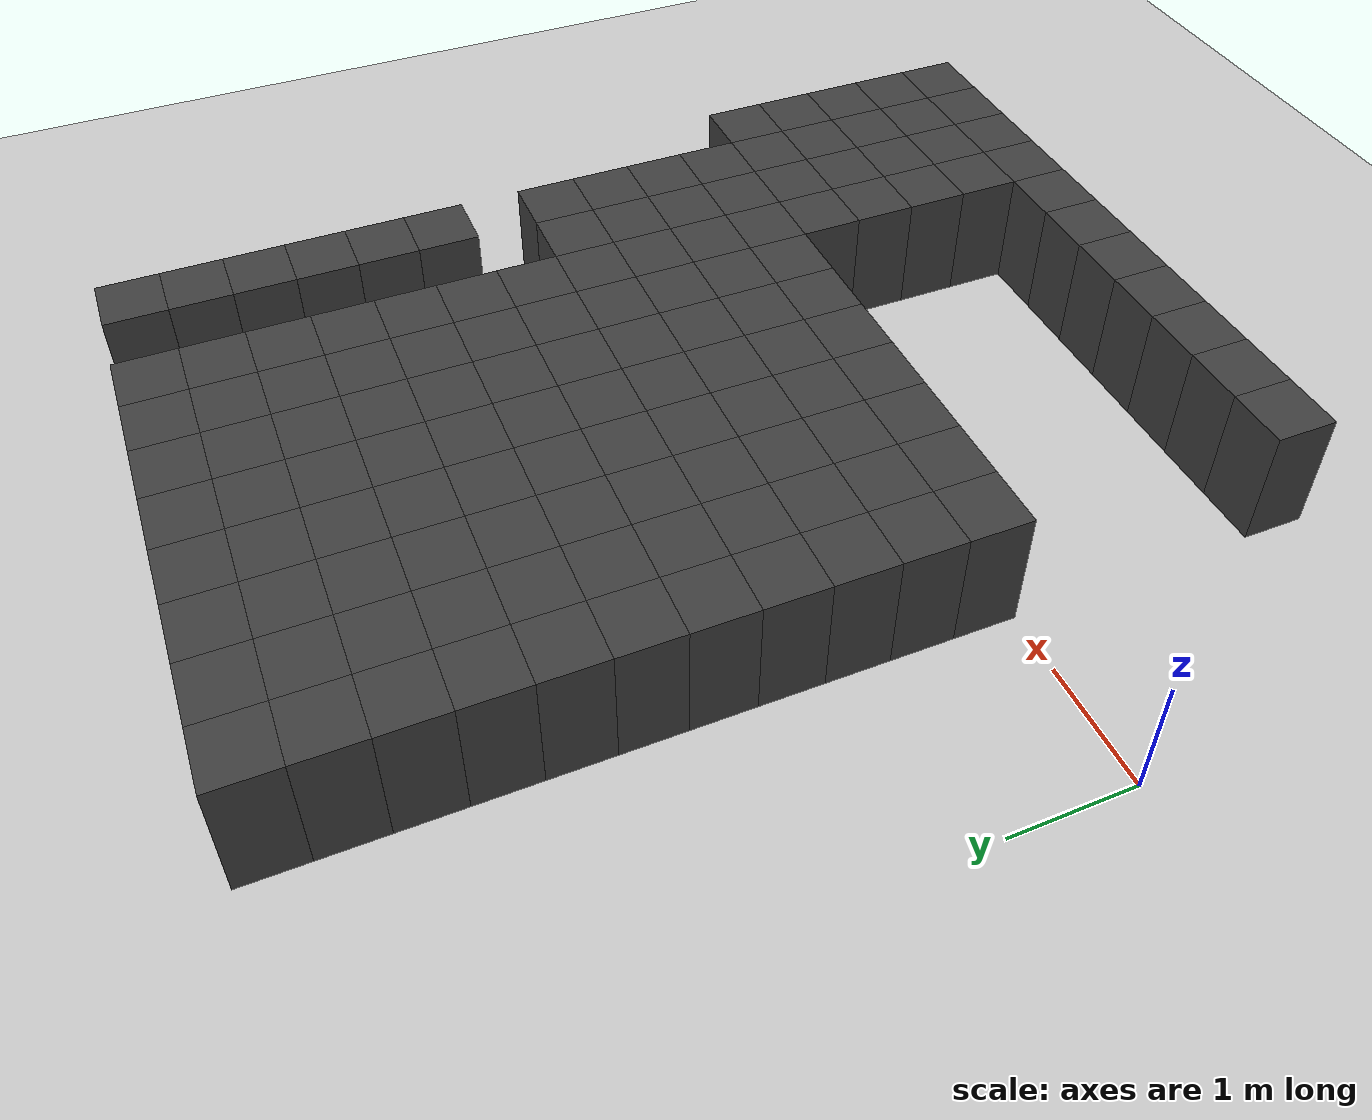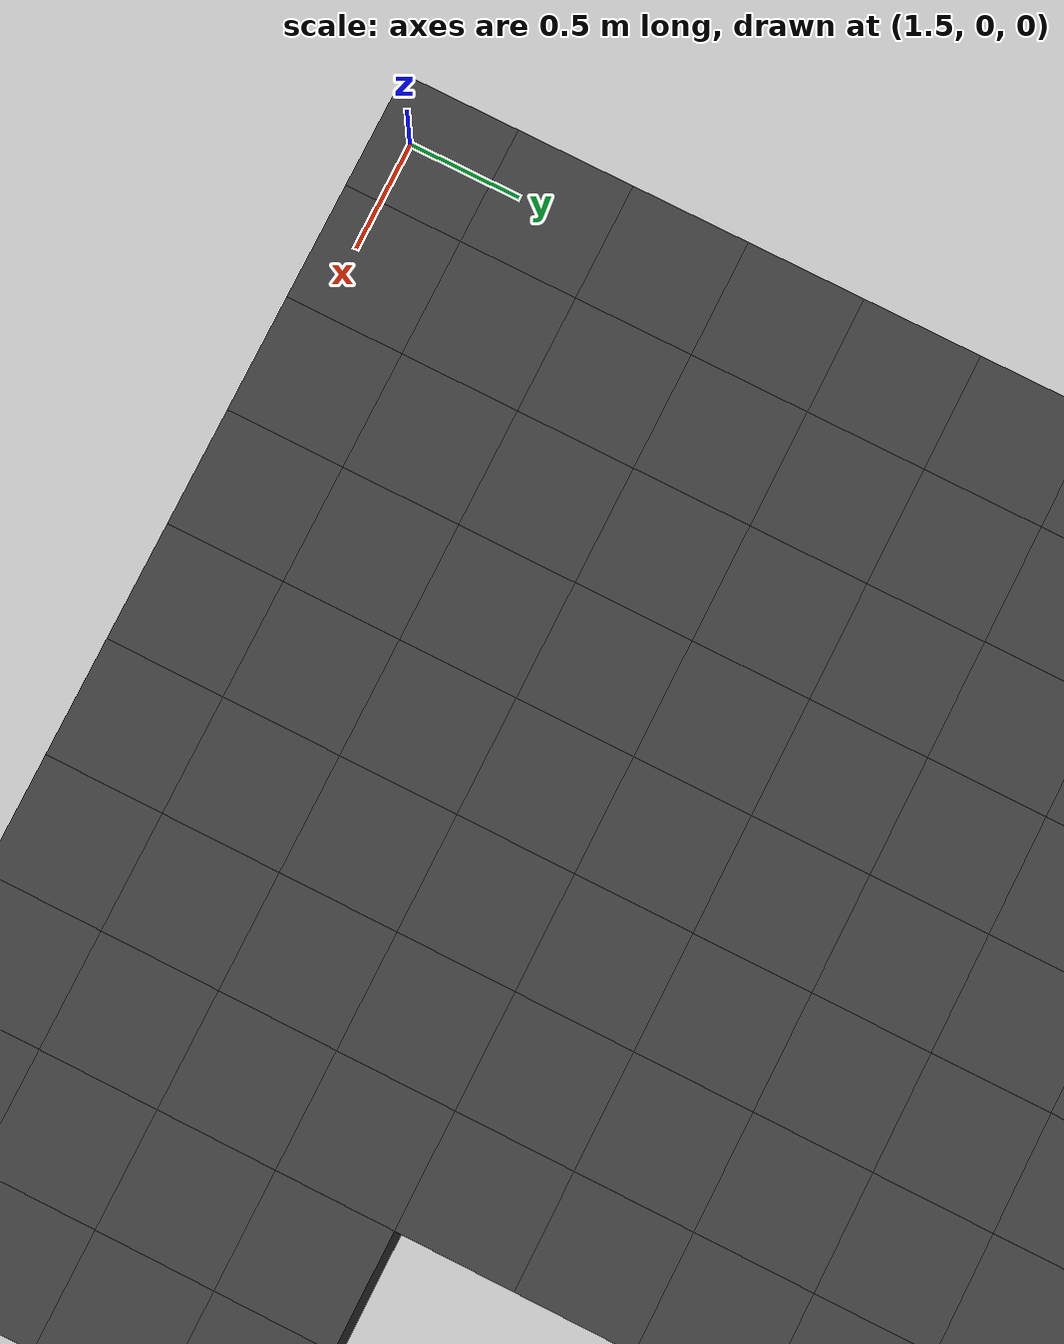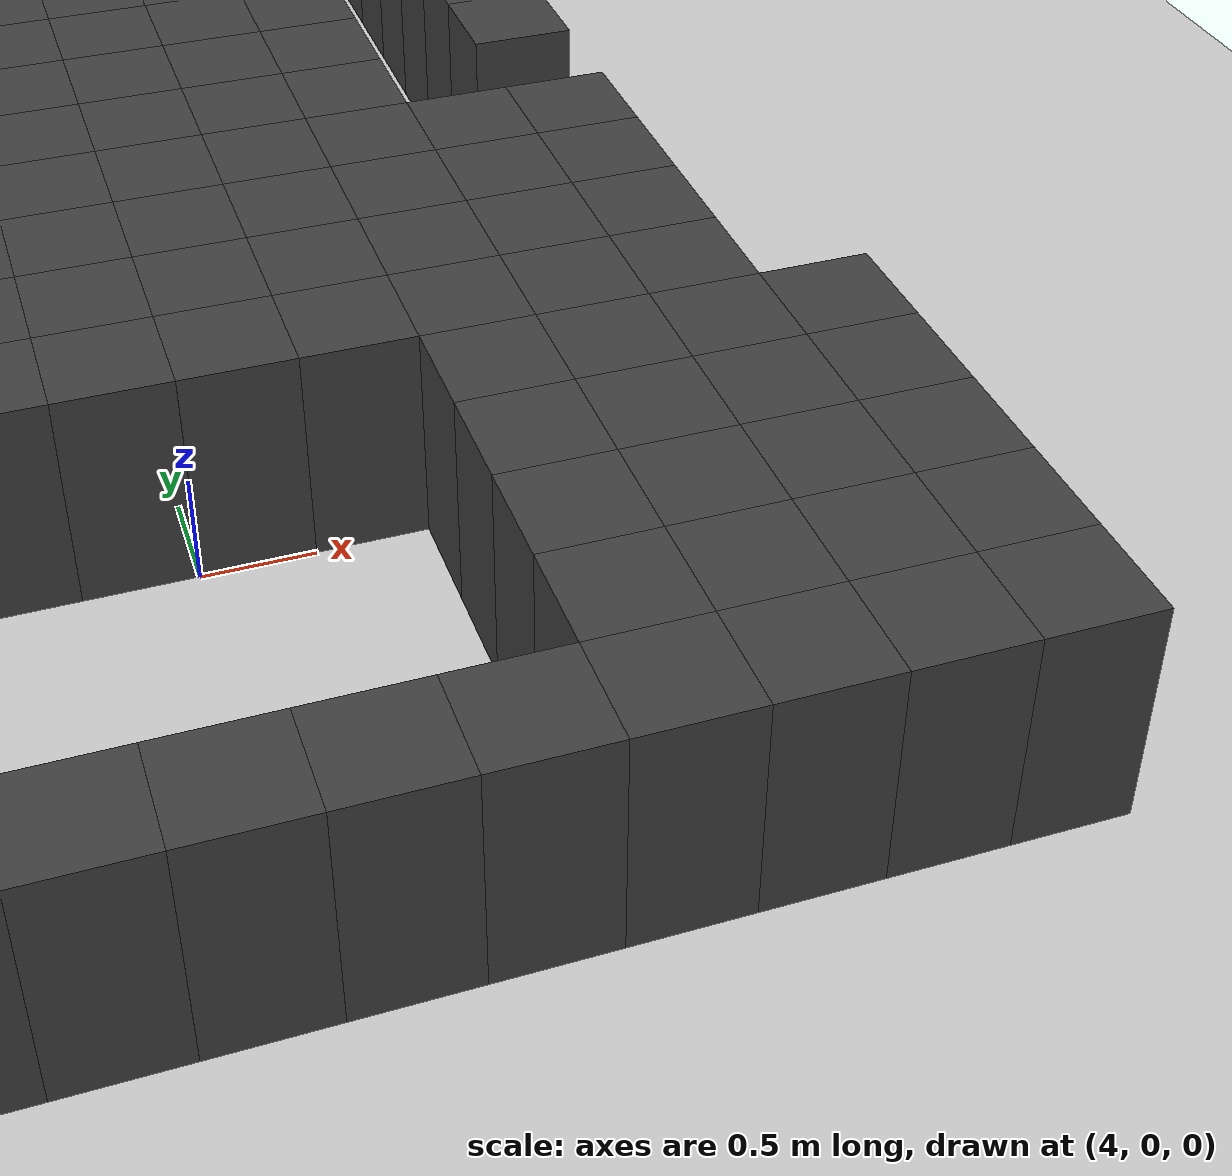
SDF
<sdf version="1.7">
 <world name="map_14735">
  <model name="ground_plane">
   <static>true</static>
   <link name="link">
    <collision name="collision">
     <geometry><plane><normal>0 0 1</normal><size>200 200</size></plane></geometry>
    </collision>
    <visual name="visual">
     <geometry><plane><normal>0 0 1</normal><size>200 200</size></plane></geometry>
     <material><ambient>0.8 0.8 0.8 1</ambient><diffuse>0.8 0.8 0.8 1</diffuse></material>
    </visual>
   </link>
  </model>
  <model name="maze_environment">
   <static>true</static>
   <link name="wall_439">
    <pose>1.750 5.250 0.500 0 0 0</pose>
    <collision name="col"><geometry><box><size>0.5 0.5 1.0</size></box></geometry></collision>
    <visual name="vis">
     <geometry><box><size>0.5 0.5 1.0</size></box></geometry>
     <material><ambient>0.15 0.15 0.15 1</ambient><diffuse>0.25 0.25 0.25 1</diffuse></material>
    </visual>
   </link>
   <link name="wall_440">
    <pose>2.250 5.250 0.500 0 0 0</pose>
    <collision name="col"><geometry><box><size>0.5 0.5 1.0</size></box></geometry></collision>
    <visual name="vis">
     <geometry><box><size>0.5 0.5 1.0</size></box></geometry>
     <material><ambient>0.15 0.15 0.15 1</ambient><diffuse>0.25 0.25 0.25 1</diffuse></material>
    </visual>
   </link>
   <link name="wall_441">
    <pose>2.750 5.250 0.500 0 0 0</pose>
    <collision name="col"><geometry><box><size>0.5 0.5 1.0</size></box></geometry></collision>
    <visual name="vis">
     <geometry><box><size>0.5 0.5 1.0</size></box></geometry>
     <material><ambient>0.15 0.15 0.15 1</ambient><diffuse>0.25 0.25 0.25 1</diffuse></material>
    </visual>
   </link>
   <link name="wall_442">
    <pose>3.250 5.250 0.500 0 0 0</pose>
    <collision name="col"><geometry><box><size>0.5 0.5 1.0</size></box></geometry></collision>
    <visual name="vis">
     <geometry><box><size>0.5 0.5 1.0</size></box></geometry>
     <material><ambient>0.15 0.15 0.15 1</ambient><diffuse>0.25 0.25 0.25 1</diffuse></material>
    </visual>
   </link>
   <link name="wall_443">
    <pose>3.750 5.250 0.500 0 0 0</pose>
    <collision name="col"><geometry><box><size>0.5 0.5 1.0</size></box></geometry></collision>
    <visual name="vis">
     <geometry><box><size>0.5 0.5 1.0</size></box></geometry>
     <material><ambient>0.15 0.15 0.15 1</ambient><diffuse>0.25 0.25 0.25 1</diffuse></material>
    </visual>
   </link>
   <link name="wall_444">
    <pose>4.250 5.250 0.500 0 0 0</pose>
    <collision name="col"><geometry><box><size>0.5 0.5 1.0</size></box></geometry></collision>
    <visual name="vis">
     <geometry><box><size>0.5 0.5 1.0</size></box></geometry>
     <material><ambient>0.15 0.15 0.15 1</ambient><diffuse>0.25 0.25 0.25 1</diffuse></material>
    </visual>
   </link>
   <link name="wall_445">
    <pose>4.750 5.250 0.500 0 0 0</pose>
    <collision name="col"><geometry><box><size>0.5 0.5 1.0</size></box></geometry></collision>
    <visual name="vis">
     <geometry><box><size>0.5 0.5 1.0</size></box></geometry>
     <material><ambient>0.15 0.15 0.15 1</ambient><diffuse>0.25 0.25 0.25 1</diffuse></material>
    </visual>
   </link>
   <link name="wall_446">
    <pose>5.250 5.250 0.500 0 0 0</pose>
    <collision name="col"><geometry><box><size>0.5 0.5 1.0</size></box></geometry></collision>
    <visual name="vis">
     <geometry><box><size>0.5 0.5 1.0</size></box></geometry>
     <material><ambient>0.15 0.15 0.15 1</ambient><diffuse>0.25 0.25 0.25 1</diffuse></material>
    </visual>
   </link>
   <link name="wall_447">
    <pose>6.250 5.250 0.500 0 0 0</pose>
    <collision name="col"><geometry><box><size>0.5 0.5 1.0</size></box></geometry></collision>
    <visual name="vis">
     <geometry><box><size>0.5 0.5 1.0</size></box></geometry>
     <material><ambient>0.15 0.15 0.15 1</ambient><diffuse>0.25 0.25 0.25 1</diffuse></material>
    </visual>
   </link>
   <link name="wall_479">
    <pose>1.750 4.750 0.500 0 0 0</pose>
    <collision name="col"><geometry><box><size>0.5 0.5 1.0</size></box></geometry></collision>
    <visual name="vis">
     <geometry><box><size>0.5 0.5 1.0</size></box></geometry>
     <material><ambient>0.15 0.15 0.15 1</ambient><diffuse>0.25 0.25 0.25 1</diffuse></material>
    </visual>
   </link>
   <link name="wall_480">
    <pose>2.250 4.750 0.500 0 0 0</pose>
    <collision name="col"><geometry><box><size>0.5 0.5 1.0</size></box></geometry></collision>
    <visual name="vis">
     <geometry><box><size>0.5 0.5 1.0</size></box></geometry>
     <material><ambient>0.15 0.15 0.15 1</ambient><diffuse>0.25 0.25 0.25 1</diffuse></material>
    </visual>
   </link>
   <link name="wall_481">
    <pose>2.750 4.750 0.500 0 0 0</pose>
    <collision name="col"><geometry><box><size>0.5 0.5 1.0</size></box></geometry></collision>
    <visual name="vis">
     <geometry><box><size>0.5 0.5 1.0</size></box></geometry>
     <material><ambient>0.15 0.15 0.15 1</ambient><diffuse>0.25 0.25 0.25 1</diffuse></material>
    </visual>
   </link>
   <link name="wall_482">
    <pose>3.250 4.750 0.500 0 0 0</pose>
    <collision name="col"><geometry><box><size>0.5 0.5 1.0</size></box></geometry></collision>
    <visual name="vis">
     <geometry><box><size>0.5 0.5 1.0</size></box></geometry>
     <material><ambient>0.15 0.15 0.15 1</ambient><diffuse>0.25 0.25 0.25 1</diffuse></material>
    </visual>
   </link>
   <link name="wall_483">
    <pose>3.750 4.750 0.500 0 0 0</pose>
    <collision name="col"><geometry><box><size>0.5 0.5 1.0</size></box></geometry></collision>
    <visual name="vis">
     <geometry><box><size>0.5 0.5 1.0</size></box></geometry>
     <material><ambient>0.15 0.15 0.15 1</ambient><diffuse>0.25 0.25 0.25 1</diffuse></material>
    </visual>
   </link>
   <link name="wall_484">
    <pose>4.250 4.750 0.500 0 0 0</pose>
    <collision name="col"><geometry><box><size>0.5 0.5 1.0</size></box></geometry></collision>
    <visual name="vis">
     <geometry><box><size>0.5 0.5 1.0</size></box></geometry>
     <material><ambient>0.15 0.15 0.15 1</ambient><diffuse>0.25 0.25 0.25 1</diffuse></material>
    </visual>
   </link>
   <link name="wall_485">
    <pose>4.750 4.750 0.500 0 0 0</pose>
    <collision name="col"><geometry><box><size>0.5 0.5 1.0</size></box></geometry></collision>
    <visual name="vis">
     <geometry><box><size>0.5 0.5 1.0</size></box></geometry>
     <material><ambient>0.15 0.15 0.15 1</ambient><diffuse>0.25 0.25 0.25 1</diffuse></material>
    </visual>
   </link>
   <link name="wall_486">
    <pose>5.250 4.750 0.500 0 0 0</pose>
    <collision name="col"><geometry><box><size>0.5 0.5 1.0</size></box></geometry></collision>
    <visual name="vis">
     <geometry><box><size>0.5 0.5 1.0</size></box></geometry>
     <material><ambient>0.15 0.15 0.15 1</ambient><diffuse>0.25 0.25 0.25 1</diffuse></material>
    </visual>
   </link>
   <link name="wall_487">
    <pose>6.250 4.750 0.500 0 0 0</pose>
    <collision name="col"><geometry><box><size>0.5 0.5 1.0</size></box></geometry></collision>
    <visual name="vis">
     <geometry><box><size>0.5 0.5 1.0</size></box></geometry>
     <material><ambient>0.15 0.15 0.15 1</ambient><diffuse>0.25 0.25 0.25 1</diffuse></material>
    </visual>
   </link>
   <link name="wall_516">
    <pose>1.750 4.250 0.500 0 0 0</pose>
    <collision name="col"><geometry><box><size>0.5 0.5 1.0</size></box></geometry></collision>
    <visual name="vis">
     <geometry><box><size>0.5 0.5 1.0</size></box></geometry>
     <material><ambient>0.15 0.15 0.15 1</ambient><diffuse>0.25 0.25 0.25 1</diffuse></material>
    </visual>
   </link>
   <link name="wall_517">
    <pose>2.250 4.250 0.500 0 0 0</pose>
    <collision name="col"><geometry><box><size>0.5 0.5 1.0</size></box></geometry></collision>
    <visual name="vis">
     <geometry><box><size>0.5 0.5 1.0</size></box></geometry>
     <material><ambient>0.15 0.15 0.15 1</ambient><diffuse>0.25 0.25 0.25 1</diffuse></material>
    </visual>
   </link>
   <link name="wall_518">
    <pose>2.750 4.250 0.500 0 0 0</pose>
    <collision name="col"><geometry><box><size>0.5 0.5 1.0</size></box></geometry></collision>
    <visual name="vis">
     <geometry><box><size>0.5 0.5 1.0</size></box></geometry>
     <material><ambient>0.15 0.15 0.15 1</ambient><diffuse>0.25 0.25 0.25 1</diffuse></material>
    </visual>
   </link>
   <link name="wall_519">
    <pose>3.250 4.250 0.500 0 0 0</pose>
    <collision name="col"><geometry><box><size>0.5 0.5 1.0</size></box></geometry></collision>
    <visual name="vis">
     <geometry><box><size>0.5 0.5 1.0</size></box></geometry>
     <material><ambient>0.15 0.15 0.15 1</ambient><diffuse>0.25 0.25 0.25 1</diffuse></material>
    </visual>
   </link>
   <link name="wall_520">
    <pose>3.750 4.250 0.500 0 0 0</pose>
    <collision name="col"><geometry><box><size>0.5 0.5 1.0</size></box></geometry></collision>
    <visual name="vis">
     <geometry><box><size>0.5 0.5 1.0</size></box></geometry>
     <material><ambient>0.15 0.15 0.15 1</ambient><diffuse>0.25 0.25 0.25 1</diffuse></material>
    </visual>
   </link>
   <link name="wall_521">
    <pose>4.250 4.250 0.500 0 0 0</pose>
    <collision name="col"><geometry><box><size>0.5 0.5 1.0</size></box></geometry></collision>
    <visual name="vis">
     <geometry><box><size>0.5 0.5 1.0</size></box></geometry>
     <material><ambient>0.15 0.15 0.15 1</ambient><diffuse>0.25 0.25 0.25 1</diffuse></material>
    </visual>
   </link>
   <link name="wall_522">
    <pose>4.750 4.250 0.500 0 0 0</pose>
    <collision name="col"><geometry><box><size>0.5 0.5 1.0</size></box></geometry></collision>
    <visual name="vis">
     <geometry><box><size>0.5 0.5 1.0</size></box></geometry>
     <material><ambient>0.15 0.15 0.15 1</ambient><diffuse>0.25 0.25 0.25 1</diffuse></material>
    </visual>
   </link>
   <link name="wall_523">
    <pose>5.250 4.250 0.500 0 0 0</pose>
    <collision name="col"><geometry><box><size>0.5 0.5 1.0</size></box></geometry></collision>
    <visual name="vis">
     <geometry><box><size>0.5 0.5 1.0</size></box></geometry>
     <material><ambient>0.15 0.15 0.15 1</ambient><diffuse>0.25 0.25 0.25 1</diffuse></material>
    </visual>
   </link>
   <link name="wall_524">
    <pose>6.250 4.250 0.500 0 0 0</pose>
    <collision name="col"><geometry><box><size>0.5 0.5 1.0</size></box></geometry></collision>
    <visual name="vis">
     <geometry><box><size>0.5 0.5 1.0</size></box></geometry>
     <material><ambient>0.15 0.15 0.15 1</ambient><diffuse>0.25 0.25 0.25 1</diffuse></material>
    </visual>
   </link>
   <link name="wall_547">
    <pose>1.750 3.750 0.500 0 0 0</pose>
    <collision name="col"><geometry><box><size>0.5 0.5 1.0</size></box></geometry></collision>
    <visual name="vis">
     <geometry><box><size>0.5 0.5 1.0</size></box></geometry>
     <material><ambient>0.15 0.15 0.15 1</ambient><diffuse>0.25 0.25 0.25 1</diffuse></material>
    </visual>
   </link>
   <link name="wall_548">
    <pose>2.250 3.750 0.500 0 0 0</pose>
    <collision name="col"><geometry><box><size>0.5 0.5 1.0</size></box></geometry></collision>
    <visual name="vis">
     <geometry><box><size>0.5 0.5 1.0</size></box></geometry>
     <material><ambient>0.15 0.15 0.15 1</ambient><diffuse>0.25 0.25 0.25 1</diffuse></material>
    </visual>
   </link>
   <link name="wall_549">
    <pose>2.750 3.750 0.500 0 0 0</pose>
    <collision name="col"><geometry><box><size>0.5 0.5 1.0</size></box></geometry></collision>
    <visual name="vis">
     <geometry><box><size>0.5 0.5 1.0</size></box></geometry>
     <material><ambient>0.15 0.15 0.15 1</ambient><diffuse>0.25 0.25 0.25 1</diffuse></material>
    </visual>
   </link>
   <link name="wall_550">
    <pose>3.250 3.750 0.500 0 0 0</pose>
    <collision name="col"><geometry><box><size>0.5 0.5 1.0</size></box></geometry></collision>
    <visual name="vis">
     <geometry><box><size>0.5 0.5 1.0</size></box></geometry>
     <material><ambient>0.15 0.15 0.15 1</ambient><diffuse>0.25 0.25 0.25 1</diffuse></material>
    </visual>
   </link>
   <link name="wall_551">
    <pose>3.750 3.750 0.500 0 0 0</pose>
    <collision name="col"><geometry><box><size>0.5 0.5 1.0</size></box></geometry></collision>
    <visual name="vis">
     <geometry><box><size>0.5 0.5 1.0</size></box></geometry>
     <material><ambient>0.15 0.15 0.15 1</ambient><diffuse>0.25 0.25 0.25 1</diffuse></material>
    </visual>
   </link>
   <link name="wall_552">
    <pose>4.250 3.750 0.500 0 0 0</pose>
    <collision name="col"><geometry><box><size>0.5 0.5 1.0</size></box></geometry></collision>
    <visual name="vis">
     <geometry><box><size>0.5 0.5 1.0</size></box></geometry>
     <material><ambient>0.15 0.15 0.15 1</ambient><diffuse>0.25 0.25 0.25 1</diffuse></material>
    </visual>
   </link>
   <link name="wall_553">
    <pose>4.750 3.750 0.500 0 0 0</pose>
    <collision name="col"><geometry><box><size>0.5 0.5 1.0</size></box></geometry></collision>
    <visual name="vis">
     <geometry><box><size>0.5 0.5 1.0</size></box></geometry>
     <material><ambient>0.15 0.15 0.15 1</ambient><diffuse>0.25 0.25 0.25 1</diffuse></material>
    </visual>
   </link>
   <link name="wall_554">
    <pose>5.250 3.750 0.500 0 0 0</pose>
    <collision name="col"><geometry><box><size>0.5 0.5 1.0</size></box></geometry></collision>
    <visual name="vis">
     <geometry><box><size>0.5 0.5 1.0</size></box></geometry>
     <material><ambient>0.15 0.15 0.15 1</ambient><diffuse>0.25 0.25 0.25 1</diffuse></material>
    </visual>
   </link>
   <link name="wall_555">
    <pose>6.250 3.750 0.500 0 0 0</pose>
    <collision name="col"><geometry><box><size>0.5 0.5 1.0</size></box></geometry></collision>
    <visual name="vis">
     <geometry><box><size>0.5 0.5 1.0</size></box></geometry>
     <material><ambient>0.15 0.15 0.15 1</ambient><diffuse>0.25 0.25 0.25 1</diffuse></material>
    </visual>
   </link>
   <link name="wall_575">
    <pose>1.750 3.250 0.500 0 0 0</pose>
    <collision name="col"><geometry><box><size>0.5 0.5 1.0</size></box></geometry></collision>
    <visual name="vis">
     <geometry><box><size>0.5 0.5 1.0</size></box></geometry>
     <material><ambient>0.15 0.15 0.15 1</ambient><diffuse>0.25 0.25 0.25 1</diffuse></material>
    </visual>
   </link>
   <link name="wall_576">
    <pose>2.250 3.250 0.500 0 0 0</pose>
    <collision name="col"><geometry><box><size>0.5 0.5 1.0</size></box></geometry></collision>
    <visual name="vis">
     <geometry><box><size>0.5 0.5 1.0</size></box></geometry>
     <material><ambient>0.15 0.15 0.15 1</ambient><diffuse>0.25 0.25 0.25 1</diffuse></material>
    </visual>
   </link>
   <link name="wall_577">
    <pose>2.750 3.250 0.500 0 0 0</pose>
    <collision name="col"><geometry><box><size>0.5 0.5 1.0</size></box></geometry></collision>
    <visual name="vis">
     <geometry><box><size>0.5 0.5 1.0</size></box></geometry>
     <material><ambient>0.15 0.15 0.15 1</ambient><diffuse>0.25 0.25 0.25 1</diffuse></material>
    </visual>
   </link>
   <link name="wall_578">
    <pose>3.250 3.250 0.500 0 0 0</pose>
    <collision name="col"><geometry><box><size>0.5 0.5 1.0</size></box></geometry></collision>
    <visual name="vis">
     <geometry><box><size>0.5 0.5 1.0</size></box></geometry>
     <material><ambient>0.15 0.15 0.15 1</ambient><diffuse>0.25 0.25 0.25 1</diffuse></material>
    </visual>
   </link>
   <link name="wall_579">
    <pose>3.750 3.250 0.500 0 0 0</pose>
    <collision name="col"><geometry><box><size>0.5 0.5 1.0</size></box></geometry></collision>
    <visual name="vis">
     <geometry><box><size>0.5 0.5 1.0</size></box></geometry>
     <material><ambient>0.15 0.15 0.15 1</ambient><diffuse>0.25 0.25 0.25 1</diffuse></material>
    </visual>
   </link>
   <link name="wall_580">
    <pose>4.250 3.250 0.500 0 0 0</pose>
    <collision name="col"><geometry><box><size>0.5 0.5 1.0</size></box></geometry></collision>
    <visual name="vis">
     <geometry><box><size>0.5 0.5 1.0</size></box></geometry>
     <material><ambient>0.15 0.15 0.15 1</ambient><diffuse>0.25 0.25 0.25 1</diffuse></material>
    </visual>
   </link>
   <link name="wall_581">
    <pose>4.750 3.250 0.500 0 0 0</pose>
    <collision name="col"><geometry><box><size>0.5 0.5 1.0</size></box></geometry></collision>
    <visual name="vis">
     <geometry><box><size>0.5 0.5 1.0</size></box></geometry>
     <material><ambient>0.15 0.15 0.15 1</ambient><diffuse>0.25 0.25 0.25 1</diffuse></material>
    </visual>
   </link>
   <link name="wall_582">
    <pose>5.250 3.250 0.500 0 0 0</pose>
    <collision name="col"><geometry><box><size>0.5 0.5 1.0</size></box></geometry></collision>
    <visual name="vis">
     <geometry><box><size>0.5 0.5 1.0</size></box></geometry>
     <material><ambient>0.15 0.15 0.15 1</ambient><diffuse>0.25 0.25 0.25 1</diffuse></material>
    </visual>
   </link>
   <link name="wall_583">
    <pose>6.250 3.250 0.500 0 0 0</pose>
    <collision name="col"><geometry><box><size>0.5 0.5 1.0</size></box></geometry></collision>
    <visual name="vis">
     <geometry><box><size>0.5 0.5 1.0</size></box></geometry>
     <material><ambient>0.15 0.15 0.15 1</ambient><diffuse>0.25 0.25 0.25 1</diffuse></material>
    </visual>
   </link>
   <link name="wall_603">
    <pose>1.750 2.750 0.500 0 0 0</pose>
    <collision name="col"><geometry><box><size>0.5 0.5 1.0</size></box></geometry></collision>
    <visual name="vis">
     <geometry><box><size>0.5 0.5 1.0</size></box></geometry>
     <material><ambient>0.15 0.15 0.15 1</ambient><diffuse>0.25 0.25 0.25 1</diffuse></material>
    </visual>
   </link>
   <link name="wall_604">
    <pose>2.250 2.750 0.500 0 0 0</pose>
    <collision name="col"><geometry><box><size>0.5 0.5 1.0</size></box></geometry></collision>
    <visual name="vis">
     <geometry><box><size>0.5 0.5 1.0</size></box></geometry>
     <material><ambient>0.15 0.15 0.15 1</ambient><diffuse>0.25 0.25 0.25 1</diffuse></material>
    </visual>
   </link>
   <link name="wall_605">
    <pose>2.750 2.750 0.500 0 0 0</pose>
    <collision name="col"><geometry><box><size>0.5 0.5 1.0</size></box></geometry></collision>
    <visual name="vis">
     <geometry><box><size>0.5 0.5 1.0</size></box></geometry>
     <material><ambient>0.15 0.15 0.15 1</ambient><diffuse>0.25 0.25 0.25 1</diffuse></material>
    </visual>
   </link>
   <link name="wall_606">
    <pose>3.250 2.750 0.500 0 0 0</pose>
    <collision name="col"><geometry><box><size>0.5 0.5 1.0</size></box></geometry></collision>
    <visual name="vis">
     <geometry><box><size>0.5 0.5 1.0</size></box></geometry>
     <material><ambient>0.15 0.15 0.15 1</ambient><diffuse>0.25 0.25 0.25 1</diffuse></material>
    </visual>
   </link>
   <link name="wall_607">
    <pose>3.750 2.750 0.500 0 0 0</pose>
    <collision name="col"><geometry><box><size>0.5 0.5 1.0</size></box></geometry></collision>
    <visual name="vis">
     <geometry><box><size>0.5 0.5 1.0</size></box></geometry>
     <material><ambient>0.15 0.15 0.15 1</ambient><diffuse>0.25 0.25 0.25 1</diffuse></material>
    </visual>
   </link>
   <link name="wall_608">
    <pose>4.250 2.750 0.500 0 0 0</pose>
    <collision name="col"><geometry><box><size>0.5 0.5 1.0</size></box></geometry></collision>
    <visual name="vis">
     <geometry><box><size>0.5 0.5 1.0</size></box></geometry>
     <material><ambient>0.15 0.15 0.15 1</ambient><diffuse>0.25 0.25 0.25 1</diffuse></material>
    </visual>
   </link>
   <link name="wall_609">
    <pose>4.750 2.750 0.500 0 0 0</pose>
    <collision name="col"><geometry><box><size>0.5 0.5 1.0</size></box></geometry></collision>
    <visual name="vis">
     <geometry><box><size>0.5 0.5 1.0</size></box></geometry>
     <material><ambient>0.15 0.15 0.15 1</ambient><diffuse>0.25 0.25 0.25 1</diffuse></material>
    </visual>
   </link>
   <link name="wall_610">
    <pose>5.250 2.750 0.500 0 0 0</pose>
    <collision name="col"><geometry><box><size>0.5 0.5 1.0</size></box></geometry></collision>
    <visual name="vis">
     <geometry><box><size>0.5 0.5 1.0</size></box></geometry>
     <material><ambient>0.15 0.15 0.15 1</ambient><diffuse>0.25 0.25 0.25 1</diffuse></material>
    </visual>
   </link>
   <link name="wall_611">
    <pose>6.250 2.750 0.500 0 0 0</pose>
    <collision name="col"><geometry><box><size>0.5 0.5 1.0</size></box></geometry></collision>
    <visual name="vis">
     <geometry><box><size>0.5 0.5 1.0</size></box></geometry>
     <material><ambient>0.15 0.15 0.15 1</ambient><diffuse>0.25 0.25 0.25 1</diffuse></material>
    </visual>
   </link>
   <link name="wall_628">
    <pose>1.750 2.250 0.500 0 0 0</pose>
    <collision name="col"><geometry><box><size>0.5 0.5 1.0</size></box></geometry></collision>
    <visual name="vis">
     <geometry><box><size>0.5 0.5 1.0</size></box></geometry>
     <material><ambient>0.15 0.15 0.15 1</ambient><diffuse>0.25 0.25 0.25 1</diffuse></material>
    </visual>
   </link>
   <link name="wall_629">
    <pose>2.250 2.250 0.500 0 0 0</pose>
    <collision name="col"><geometry><box><size>0.5 0.5 1.0</size></box></geometry></collision>
    <visual name="vis">
     <geometry><box><size>0.5 0.5 1.0</size></box></geometry>
     <material><ambient>0.15 0.15 0.15 1</ambient><diffuse>0.25 0.25 0.25 1</diffuse></material>
    </visual>
   </link>
   <link name="wall_630">
    <pose>2.750 2.250 0.500 0 0 0</pose>
    <collision name="col"><geometry><box><size>0.5 0.5 1.0</size></box></geometry></collision>
    <visual name="vis">
     <geometry><box><size>0.5 0.5 1.0</size></box></geometry>
     <material><ambient>0.15 0.15 0.15 1</ambient><diffuse>0.25 0.25 0.25 1</diffuse></material>
    </visual>
   </link>
   <link name="wall_631">
    <pose>3.250 2.250 0.500 0 0 0</pose>
    <collision name="col"><geometry><box><size>0.5 0.5 1.0</size></box></geometry></collision>
    <visual name="vis">
     <geometry><box><size>0.5 0.5 1.0</size></box></geometry>
     <material><ambient>0.15 0.15 0.15 1</ambient><diffuse>0.25 0.25 0.25 1</diffuse></material>
    </visual>
   </link>
   <link name="wall_632">
    <pose>3.750 2.250 0.500 0 0 0</pose>
    <collision name="col"><geometry><box><size>0.5 0.5 1.0</size></box></geometry></collision>
    <visual name="vis">
     <geometry><box><size>0.5 0.5 1.0</size></box></geometry>
     <material><ambient>0.15 0.15 0.15 1</ambient><diffuse>0.25 0.25 0.25 1</diffuse></material>
    </visual>
   </link>
   <link name="wall_633">
    <pose>4.250 2.250 0.500 0 0 0</pose>
    <collision name="col"><geometry><box><size>0.5 0.5 1.0</size></box></geometry></collision>
    <visual name="vis">
     <geometry><box><size>0.5 0.5 1.0</size></box></geometry>
     <material><ambient>0.15 0.15 0.15 1</ambient><diffuse>0.25 0.25 0.25 1</diffuse></material>
    </visual>
   </link>
   <link name="wall_634">
    <pose>4.750 2.250 0.500 0 0 0</pose>
    <collision name="col"><geometry><box><size>0.5 0.5 1.0</size></box></geometry></collision>
    <visual name="vis">
     <geometry><box><size>0.5 0.5 1.0</size></box></geometry>
     <material><ambient>0.15 0.15 0.15 1</ambient><diffuse>0.25 0.25 0.25 1</diffuse></material>
    </visual>
   </link>
   <link name="wall_635">
    <pose>5.250 2.250 0.500 0 0 0</pose>
    <collision name="col"><geometry><box><size>0.5 0.5 1.0</size></box></geometry></collision>
    <visual name="vis">
     <geometry><box><size>0.5 0.5 1.0</size></box></geometry>
     <material><ambient>0.15 0.15 0.15 1</ambient><diffuse>0.25 0.25 0.25 1</diffuse></material>
    </visual>
   </link>
   <link name="wall_647">
    <pose>1.750 1.750 0.500 0 0 0</pose>
    <collision name="col"><geometry><box><size>0.5 0.5 1.0</size></box></geometry></collision>
    <visual name="vis">
     <geometry><box><size>0.5 0.5 1.0</size></box></geometry>
     <material><ambient>0.15 0.15 0.15 1</ambient><diffuse>0.25 0.25 0.25 1</diffuse></material>
    </visual>
   </link>
   <link name="wall_648">
    <pose>2.250 1.750 0.500 0 0 0</pose>
    <collision name="col"><geometry><box><size>0.5 0.5 1.0</size></box></geometry></collision>
    <visual name="vis">
     <geometry><box><size>0.5 0.5 1.0</size></box></geometry>
     <material><ambient>0.15 0.15 0.15 1</ambient><diffuse>0.25 0.25 0.25 1</diffuse></material>
    </visual>
   </link>
   <link name="wall_649">
    <pose>2.750 1.750 0.500 0 0 0</pose>
    <collision name="col"><geometry><box><size>0.5 0.5 1.0</size></box></geometry></collision>
    <visual name="vis">
     <geometry><box><size>0.5 0.5 1.0</size></box></geometry>
     <material><ambient>0.15 0.15 0.15 1</ambient><diffuse>0.25 0.25 0.25 1</diffuse></material>
    </visual>
   </link>
   <link name="wall_650">
    <pose>3.250 1.750 0.500 0 0 0</pose>
    <collision name="col"><geometry><box><size>0.5 0.5 1.0</size></box></geometry></collision>
    <visual name="vis">
     <geometry><box><size>0.5 0.5 1.0</size></box></geometry>
     <material><ambient>0.15 0.15 0.15 1</ambient><diffuse>0.25 0.25 0.25 1</diffuse></material>
    </visual>
   </link>
   <link name="wall_651">
    <pose>3.750 1.750 0.500 0 0 0</pose>
    <collision name="col"><geometry><box><size>0.5 0.5 1.0</size></box></geometry></collision>
    <visual name="vis">
     <geometry><box><size>0.5 0.5 1.0</size></box></geometry>
     <material><ambient>0.15 0.15 0.15 1</ambient><diffuse>0.25 0.25 0.25 1</diffuse></material>
    </visual>
   </link>
   <link name="wall_652">
    <pose>4.250 1.750 0.500 0 0 0</pose>
    <collision name="col"><geometry><box><size>0.5 0.5 1.0</size></box></geometry></collision>
    <visual name="vis">
     <geometry><box><size>0.5 0.5 1.0</size></box></geometry>
     <material><ambient>0.15 0.15 0.15 1</ambient><diffuse>0.25 0.25 0.25 1</diffuse></material>
    </visual>
   </link>
   <link name="wall_653">
    <pose>4.750 1.750 0.500 0 0 0</pose>
    <collision name="col"><geometry><box><size>0.5 0.5 1.0</size></box></geometry></collision>
    <visual name="vis">
     <geometry><box><size>0.5 0.5 1.0</size></box></geometry>
     <material><ambient>0.15 0.15 0.15 1</ambient><diffuse>0.25 0.25 0.25 1</diffuse></material>
    </visual>
   </link>
   <link name="wall_654">
    <pose>5.250 1.750 0.500 0 0 0</pose>
    <collision name="col"><geometry><box><size>0.5 0.5 1.0</size></box></geometry></collision>
    <visual name="vis">
     <geometry><box><size>0.5 0.5 1.0</size></box></geometry>
     <material><ambient>0.15 0.15 0.15 1</ambient><diffuse>0.25 0.25 0.25 1</diffuse></material>
    </visual>
   </link>
   <link name="wall_655">
    <pose>5.750 1.750 0.500 0 0 0</pose>
    <collision name="col"><geometry><box><size>0.5 0.5 1.0</size></box></geometry></collision>
    <visual name="vis">
     <geometry><box><size>0.5 0.5 1.0</size></box></geometry>
     <material><ambient>0.15 0.15 0.15 1</ambient><diffuse>0.25 0.25 0.25 1</diffuse></material>
    </visual>
   </link>
   <link name="wall_656">
    <pose>6.250 1.750 0.500 0 0 0</pose>
    <collision name="col"><geometry><box><size>0.5 0.5 1.0</size></box></geometry></collision>
    <visual name="vis">
     <geometry><box><size>0.5 0.5 1.0</size></box></geometry>
     <material><ambient>0.15 0.15 0.15 1</ambient><diffuse>0.25 0.25 0.25 1</diffuse></material>
    </visual>
   </link>
   <link name="wall_673">
    <pose>1.750 1.250 0.500 0 0 0</pose>
    <collision name="col"><geometry><box><size>0.5 0.5 1.0</size></box></geometry></collision>
    <visual name="vis">
     <geometry><box><size>0.5 0.5 1.0</size></box></geometry>
     <material><ambient>0.15 0.15 0.15 1</ambient><diffuse>0.25 0.25 0.25 1</diffuse></material>
    </visual>
   </link>
   <link name="wall_674">
    <pose>2.250 1.250 0.500 0 0 0</pose>
    <collision name="col"><geometry><box><size>0.5 0.5 1.0</size></box></geometry></collision>
    <visual name="vis">
     <geometry><box><size>0.5 0.5 1.0</size></box></geometry>
     <material><ambient>0.15 0.15 0.15 1</ambient><diffuse>0.25 0.25 0.25 1</diffuse></material>
    </visual>
   </link>
   <link name="wall_675">
    <pose>2.750 1.250 0.500 0 0 0</pose>
    <collision name="col"><geometry><box><size>0.5 0.5 1.0</size></box></geometry></collision>
    <visual name="vis">
     <geometry><box><size>0.5 0.5 1.0</size></box></geometry>
     <material><ambient>0.15 0.15 0.15 1</ambient><diffuse>0.25 0.25 0.25 1</diffuse></material>
    </visual>
   </link>
   <link name="wall_676">
    <pose>3.250 1.250 0.500 0 0 0</pose>
    <collision name="col"><geometry><box><size>0.5 0.5 1.0</size></box></geometry></collision>
    <visual name="vis">
     <geometry><box><size>0.5 0.5 1.0</size></box></geometry>
     <material><ambient>0.15 0.15 0.15 1</ambient><diffuse>0.25 0.25 0.25 1</diffuse></material>
    </visual>
   </link>
   <link name="wall_677">
    <pose>3.750 1.250 0.500 0 0 0</pose>
    <collision name="col"><geometry><box><size>0.5 0.5 1.0</size></box></geometry></collision>
    <visual name="vis">
     <geometry><box><size>0.5 0.5 1.0</size></box></geometry>
     <material><ambient>0.15 0.15 0.15 1</ambient><diffuse>0.25 0.25 0.25 1</diffuse></material>
    </visual>
   </link>
   <link name="wall_678">
    <pose>4.250 1.250 0.500 0 0 0</pose>
    <collision name="col"><geometry><box><size>0.5 0.5 1.0</size></box></geometry></collision>
    <visual name="vis">
     <geometry><box><size>0.5 0.5 1.0</size></box></geometry>
     <material><ambient>0.15 0.15 0.15 1</ambient><diffuse>0.25 0.25 0.25 1</diffuse></material>
    </visual>
   </link>
   <link name="wall_679">
    <pose>4.750 1.250 0.500 0 0 0</pose>
    <collision name="col"><geometry><box><size>0.5 0.5 1.0</size></box></geometry></collision>
    <visual name="vis">
     <geometry><box><size>0.5 0.5 1.0</size></box></geometry>
     <material><ambient>0.15 0.15 0.15 1</ambient><diffuse>0.25 0.25 0.25 1</diffuse></material>
    </visual>
   </link>
   <link name="wall_680">
    <pose>5.250 1.250 0.500 0 0 0</pose>
    <collision name="col"><geometry><box><size>0.5 0.5 1.0</size></box></geometry></collision>
    <visual name="vis">
     <geometry><box><size>0.5 0.5 1.0</size></box></geometry>
     <material><ambient>0.15 0.15 0.15 1</ambient><diffuse>0.25 0.25 0.25 1</diffuse></material>
    </visual>
   </link>
   <link name="wall_681">
    <pose>5.750 1.250 0.500 0 0 0</pose>
    <collision name="col"><geometry><box><size>0.5 0.5 1.0</size></box></geometry></collision>
    <visual name="vis">
     <geometry><box><size>0.5 0.5 1.0</size></box></geometry>
     <material><ambient>0.15 0.15 0.15 1</ambient><diffuse>0.25 0.25 0.25 1</diffuse></material>
    </visual>
   </link>
   <link name="wall_682">
    <pose>6.250 1.250 0.500 0 0 0</pose>
    <collision name="col"><geometry><box><size>0.5 0.5 1.0</size></box></geometry></collision>
    <visual name="vis">
     <geometry><box><size>0.5 0.5 1.0</size></box></geometry>
     <material><ambient>0.15 0.15 0.15 1</ambient><diffuse>0.25 0.25 0.25 1</diffuse></material>
    </visual>
   </link>
   <link name="wall_698">
    <pose>1.750 0.750 0.500 0 0 0</pose>
    <collision name="col"><geometry><box><size>0.5 0.5 1.0</size></box></geometry></collision>
    <visual name="vis">
     <geometry><box><size>0.5 0.5 1.0</size></box></geometry>
     <material><ambient>0.15 0.15 0.15 1</ambient><diffuse>0.25 0.25 0.25 1</diffuse></material>
    </visual>
   </link>
   <link name="wall_699">
    <pose>2.250 0.750 0.500 0 0 0</pose>
    <collision name="col"><geometry><box><size>0.5 0.5 1.0</size></box></geometry></collision>
    <visual name="vis">
     <geometry><box><size>0.5 0.5 1.0</size></box></geometry>
     <material><ambient>0.15 0.15 0.15 1</ambient><diffuse>0.25 0.25 0.25 1</diffuse></material>
    </visual>
   </link>
   <link name="wall_700">
    <pose>2.750 0.750 0.500 0 0 0</pose>
    <collision name="col"><geometry><box><size>0.5 0.5 1.0</size></box></geometry></collision>
    <visual name="vis">
     <geometry><box><size>0.5 0.5 1.0</size></box></geometry>
     <material><ambient>0.15 0.15 0.15 1</ambient><diffuse>0.25 0.25 0.25 1</diffuse></material>
    </visual>
   </link>
   <link name="wall_701">
    <pose>3.250 0.750 0.500 0 0 0</pose>
    <collision name="col"><geometry><box><size>0.5 0.5 1.0</size></box></geometry></collision>
    <visual name="vis">
     <geometry><box><size>0.5 0.5 1.0</size></box></geometry>
     <material><ambient>0.15 0.15 0.15 1</ambient><diffuse>0.25 0.25 0.25 1</diffuse></material>
    </visual>
   </link>
   <link name="wall_702">
    <pose>3.750 0.750 0.500 0 0 0</pose>
    <collision name="col"><geometry><box><size>0.5 0.5 1.0</size></box></geometry></collision>
    <visual name="vis">
     <geometry><box><size>0.5 0.5 1.0</size></box></geometry>
     <material><ambient>0.15 0.15 0.15 1</ambient><diffuse>0.25 0.25 0.25 1</diffuse></material>
    </visual>
   </link>
   <link name="wall_703">
    <pose>4.250 0.750 0.500 0 0 0</pose>
    <collision name="col"><geometry><box><size>0.5 0.5 1.0</size></box></geometry></collision>
    <visual name="vis">
     <geometry><box><size>0.5 0.5 1.0</size></box></geometry>
     <material><ambient>0.15 0.15 0.15 1</ambient><diffuse>0.25 0.25 0.25 1</diffuse></material>
    </visual>
   </link>
   <link name="wall_704">
    <pose>4.750 0.750 0.500 0 0 0</pose>
    <collision name="col"><geometry><box><size>0.5 0.5 1.0</size></box></geometry></collision>
    <visual name="vis">
     <geometry><box><size>0.5 0.5 1.0</size></box></geometry>
     <material><ambient>0.15 0.15 0.15 1</ambient><diffuse>0.25 0.25 0.25 1</diffuse></material>
    </visual>
   </link>
   <link name="wall_705">
    <pose>5.250 0.750 0.500 0 0 0</pose>
    <collision name="col"><geometry><box><size>0.5 0.5 1.0</size></box></geometry></collision>
    <visual name="vis">
     <geometry><box><size>0.5 0.5 1.0</size></box></geometry>
     <material><ambient>0.15 0.15 0.15 1</ambient><diffuse>0.25 0.25 0.25 1</diffuse></material>
    </visual>
   </link>
   <link name="wall_706">
    <pose>5.750 0.750 0.500 0 0 0</pose>
    <collision name="col"><geometry><box><size>0.5 0.5 1.0</size></box></geometry></collision>
    <visual name="vis">
     <geometry><box><size>0.5 0.5 1.0</size></box></geometry>
     <material><ambient>0.15 0.15 0.15 1</ambient><diffuse>0.25 0.25 0.25 1</diffuse></material>
    </visual>
   </link>
   <link name="wall_707">
    <pose>6.250 0.750 0.500 0 0 0</pose>
    <collision name="col"><geometry><box><size>0.5 0.5 1.0</size></box></geometry></collision>
    <visual name="vis">
     <geometry><box><size>0.5 0.5 1.0</size></box></geometry>
     <material><ambient>0.15 0.15 0.15 1</ambient><diffuse>0.25 0.25 0.25 1</diffuse></material>
    </visual>
   </link>
   <link name="wall_725">
    <pose>1.750 0.250 0.500 0 0 0</pose>
    <collision name="col"><geometry><box><size>0.5 0.5 1.0</size></box></geometry></collision>
    <visual name="vis">
     <geometry><box><size>0.5 0.5 1.0</size></box></geometry>
     <material><ambient>0.15 0.15 0.15 1</ambient><diffuse>0.25 0.25 0.25 1</diffuse></material>
    </visual>
   </link>
   <link name="wall_726">
    <pose>2.250 0.250 0.500 0 0 0</pose>
    <collision name="col"><geometry><box><size>0.5 0.5 1.0</size></box></geometry></collision>
    <visual name="vis">
     <geometry><box><size>0.5 0.5 1.0</size></box></geometry>
     <material><ambient>0.15 0.15 0.15 1</ambient><diffuse>0.25 0.25 0.25 1</diffuse></material>
    </visual>
   </link>
   <link name="wall_727">
    <pose>2.750 0.250 0.500 0 0 0</pose>
    <collision name="col"><geometry><box><size>0.5 0.5 1.0</size></box></geometry></collision>
    <visual name="vis">
     <geometry><box><size>0.5 0.5 1.0</size></box></geometry>
     <material><ambient>0.15 0.15 0.15 1</ambient><diffuse>0.25 0.25 0.25 1</diffuse></material>
    </visual>
   </link>
   <link name="wall_728">
    <pose>3.250 0.250 0.500 0 0 0</pose>
    <collision name="col"><geometry><box><size>0.5 0.5 1.0</size></box></geometry></collision>
    <visual name="vis">
     <geometry><box><size>0.5 0.5 1.0</size></box></geometry>
     <material><ambient>0.15 0.15 0.15 1</ambient><diffuse>0.25 0.25 0.25 1</diffuse></material>
    </visual>
   </link>
   <link name="wall_729">
    <pose>3.750 0.250 0.500 0 0 0</pose>
    <collision name="col"><geometry><box><size>0.5 0.5 1.0</size></box></geometry></collision>
    <visual name="vis">
     <geometry><box><size>0.5 0.5 1.0</size></box></geometry>
     <material><ambient>0.15 0.15 0.15 1</ambient><diffuse>0.25 0.25 0.25 1</diffuse></material>
    </visual>
   </link>
   <link name="wall_730">
    <pose>4.250 0.250 0.500 0 0 0</pose>
    <collision name="col"><geometry><box><size>0.5 0.5 1.0</size></box></geometry></collision>
    <visual name="vis">
     <geometry><box><size>0.5 0.5 1.0</size></box></geometry>
     <material><ambient>0.15 0.15 0.15 1</ambient><diffuse>0.25 0.25 0.25 1</diffuse></material>
    </visual>
   </link>
   <link name="wall_731">
    <pose>4.750 0.250 0.500 0 0 0</pose>
    <collision name="col"><geometry><box><size>0.5 0.5 1.0</size></box></geometry></collision>
    <visual name="vis">
     <geometry><box><size>0.5 0.5 1.0</size></box></geometry>
     <material><ambient>0.15 0.15 0.15 1</ambient><diffuse>0.25 0.25 0.25 1</diffuse></material>
    </visual>
   </link>
   <link name="wall_732">
    <pose>5.250 0.250 0.500 0 0 0</pose>
    <collision name="col"><geometry><box><size>0.5 0.5 1.0</size></box></geometry></collision>
    <visual name="vis">
     <geometry><box><size>0.5 0.5 1.0</size></box></geometry>
     <material><ambient>0.15 0.15 0.15 1</ambient><diffuse>0.25 0.25 0.25 1</diffuse></material>
    </visual>
   </link>
   <link name="wall_733">
    <pose>5.750 0.250 0.500 0 0 0</pose>
    <collision name="col"><geometry><box><size>0.5 0.5 1.0</size></box></geometry></collision>
    <visual name="vis">
     <geometry><box><size>0.5 0.5 1.0</size></box></geometry>
     <material><ambient>0.15 0.15 0.15 1</ambient><diffuse>0.25 0.25 0.25 1</diffuse></material>
    </visual>
   </link>
   <link name="wall_734">
    <pose>6.250 0.250 0.500 0 0 0</pose>
    <collision name="col"><geometry><box><size>0.5 0.5 1.0</size></box></geometry></collision>
    <visual name="vis">
     <geometry><box><size>0.5 0.5 1.0</size></box></geometry>
     <material><ambient>0.15 0.15 0.15 1</ambient><diffuse>0.25 0.25 0.25 1</diffuse></material>
    </visual>
   </link>
   <link name="wall_768">
    <pose>5.250 -0.250 0.500 0 0 0</pose>
    <collision name="col"><geometry><box><size>0.5 0.5 1.0</size></box></geometry></collision>
    <visual name="vis">
     <geometry><box><size>0.5 0.5 1.0</size></box></geometry>
     <material><ambient>0.15 0.15 0.15 1</ambient><diffuse>0.25 0.25 0.25 1</diffuse></material>
    </visual>
   </link>
   <link name="wall_769">
    <pose>5.750 -0.250 0.500 0 0 0</pose>
    <collision name="col"><geometry><box><size>0.5 0.5 1.0</size></box></geometry></collision>
    <visual name="vis">
     <geometry><box><size>0.5 0.5 1.0</size></box></geometry>
     <material><ambient>0.15 0.15 0.15 1</ambient><diffuse>0.25 0.25 0.25 1</diffuse></material>
    </visual>
   </link>
   <link name="wall_770">
    <pose>6.250 -0.250 0.500 0 0 0</pose>
    <collision name="col"><geometry><box><size>0.5 0.5 1.0</size></box></geometry></collision>
    <visual name="vis">
     <geometry><box><size>0.5 0.5 1.0</size></box></geometry>
     <material><ambient>0.15 0.15 0.15 1</ambient><diffuse>0.25 0.25 0.25 1</diffuse></material>
    </visual>
   </link>
   <link name="wall_771">
    <pose>6.750 -0.250 0.500 0 0 0</pose>
    <collision name="col"><geometry><box><size>0.5 0.5 1.0</size></box></geometry></collision>
    <visual name="vis">
     <geometry><box><size>0.5 0.5 1.0</size></box></geometry>
     <material><ambient>0.15 0.15 0.15 1</ambient><diffuse>0.25 0.25 0.25 1</diffuse></material>
    </visual>
   </link>
   <link name="wall_804">
    <pose>5.250 -0.750 0.500 0 0 0</pose>
    <collision name="col"><geometry><box><size>0.5 0.5 1.0</size></box></geometry></collision>
    <visual name="vis">
     <geometry><box><size>0.5 0.5 1.0</size></box></geometry>
     <material><ambient>0.15 0.15 0.15 1</ambient><diffuse>0.25 0.25 0.25 1</diffuse></material>
    </visual>
   </link>
   <link name="wall_805">
    <pose>5.750 -0.750 0.500 0 0 0</pose>
    <collision name="col"><geometry><box><size>0.5 0.5 1.0</size></box></geometry></collision>
    <visual name="vis">
     <geometry><box><size>0.5 0.5 1.0</size></box></geometry>
     <material><ambient>0.15 0.15 0.15 1</ambient><diffuse>0.25 0.25 0.25 1</diffuse></material>
    </visual>
   </link>
   <link name="wall_806">
    <pose>6.250 -0.750 0.500 0 0 0</pose>
    <collision name="col"><geometry><box><size>0.5 0.5 1.0</size></box></geometry></collision>
    <visual name="vis">
     <geometry><box><size>0.5 0.5 1.0</size></box></geometry>
     <material><ambient>0.15 0.15 0.15 1</ambient><diffuse>0.25 0.25 0.25 1</diffuse></material>
    </visual>
   </link>
   <link name="wall_807">
    <pose>6.750 -0.750 0.500 0 0 0</pose>
    <collision name="col"><geometry><box><size>0.5 0.5 1.0</size></box></geometry></collision>
    <visual name="vis">
     <geometry><box><size>0.5 0.5 1.0</size></box></geometry>
     <material><ambient>0.15 0.15 0.15 1</ambient><diffuse>0.25 0.25 0.25 1</diffuse></material>
    </visual>
   </link>
   <link name="wall_840">
    <pose>5.250 -1.250 0.500 0 0 0</pose>
    <collision name="col"><geometry><box><size>0.5 0.5 1.0</size></box></geometry></collision>
    <visual name="vis">
     <geometry><box><size>0.5 0.5 1.0</size></box></geometry>
     <material><ambient>0.15 0.15 0.15 1</ambient><diffuse>0.25 0.25 0.25 1</diffuse></material>
    </visual>
   </link>
   <link name="wall_841">
    <pose>5.750 -1.250 0.500 0 0 0</pose>
    <collision name="col"><geometry><box><size>0.5 0.5 1.0</size></box></geometry></collision>
    <visual name="vis">
     <geometry><box><size>0.5 0.5 1.0</size></box></geometry>
     <material><ambient>0.15 0.15 0.15 1</ambient><diffuse>0.25 0.25 0.25 1</diffuse></material>
    </visual>
   </link>
   <link name="wall_842">
    <pose>6.250 -1.250 0.500 0 0 0</pose>
    <collision name="col"><geometry><box><size>0.5 0.5 1.0</size></box></geometry></collision>
    <visual name="vis">
     <geometry><box><size>0.5 0.5 1.0</size></box></geometry>
     <material><ambient>0.15 0.15 0.15 1</ambient><diffuse>0.25 0.25 0.25 1</diffuse></material>
    </visual>
   </link>
   <link name="wall_843">
    <pose>6.750 -1.250 0.500 0 0 0</pose>
    <collision name="col"><geometry><box><size>0.5 0.5 1.0</size></box></geometry></collision>
    <visual name="vis">
     <geometry><box><size>0.5 0.5 1.0</size></box></geometry>
     <material><ambient>0.15 0.15 0.15 1</ambient><diffuse>0.25 0.25 0.25 1</diffuse></material>
    </visual>
   </link>
   <link name="wall_880">
    <pose>5.250 -1.750 0.500 0 0 0</pose>
    <collision name="col"><geometry><box><size>0.5 0.5 1.0</size></box></geometry></collision>
    <visual name="vis">
     <geometry><box><size>0.5 0.5 1.0</size></box></geometry>
     <material><ambient>0.15 0.15 0.15 1</ambient><diffuse>0.25 0.25 0.25 1</diffuse></material>
    </visual>
   </link>
   <link name="wall_881">
    <pose>5.750 -1.750 0.500 0 0 0</pose>
    <collision name="col"><geometry><box><size>0.5 0.5 1.0</size></box></geometry></collision>
    <visual name="vis">
     <geometry><box><size>0.5 0.5 1.0</size></box></geometry>
     <material><ambient>0.15 0.15 0.15 1</ambient><diffuse>0.25 0.25 0.25 1</diffuse></material>
    </visual>
   </link>
   <link name="wall_882">
    <pose>6.250 -1.750 0.500 0 0 0</pose>
    <collision name="col"><geometry><box><size>0.5 0.5 1.0</size></box></geometry></collision>
    <visual name="vis">
     <geometry><box><size>0.5 0.5 1.0</size></box></geometry>
     <material><ambient>0.15 0.15 0.15 1</ambient><diffuse>0.25 0.25 0.25 1</diffuse></material>
    </visual>
   </link>
   <link name="wall_883">
    <pose>6.750 -1.750 0.500 0 0 0</pose>
    <collision name="col"><geometry><box><size>0.5 0.5 1.0</size></box></geometry></collision>
    <visual name="vis">
     <geometry><box><size>0.5 0.5 1.0</size></box></geometry>
     <material><ambient>0.15 0.15 0.15 1</ambient><diffuse>0.25 0.25 0.25 1</diffuse></material>
    </visual>
   </link>
   <link name="wall_920">
    <pose>1.750 -2.250 0.500 0 0 0</pose>
    <collision name="col"><geometry><box><size>0.5 0.5 1.0</size></box></geometry></collision>
    <visual name="vis">
     <geometry><box><size>0.5 0.5 1.0</size></box></geometry>
     <material><ambient>0.15 0.15 0.15 1</ambient><diffuse>0.25 0.25 0.25 1</diffuse></material>
    </visual>
   </link>
   <link name="wall_921">
    <pose>2.250 -2.250 0.500 0 0 0</pose>
    <collision name="col"><geometry><box><size>0.5 0.5 1.0</size></box></geometry></collision>
    <visual name="vis">
     <geometry><box><size>0.5 0.5 1.0</size></box></geometry>
     <material><ambient>0.15 0.15 0.15 1</ambient><diffuse>0.25 0.25 0.25 1</diffuse></material>
    </visual>
   </link>
   <link name="wall_922">
    <pose>2.750 -2.250 0.500 0 0 0</pose>
    <collision name="col"><geometry><box><size>0.5 0.5 1.0</size></box></geometry></collision>
    <visual name="vis">
     <geometry><box><size>0.5 0.5 1.0</size></box></geometry>
     <material><ambient>0.15 0.15 0.15 1</ambient><diffuse>0.25 0.25 0.25 1</diffuse></material>
    </visual>
   </link>
   <link name="wall_923">
    <pose>3.250 -2.250 0.500 0 0 0</pose>
    <collision name="col"><geometry><box><size>0.5 0.5 1.0</size></box></geometry></collision>
    <visual name="vis">
     <geometry><box><size>0.5 0.5 1.0</size></box></geometry>
     <material><ambient>0.15 0.15 0.15 1</ambient><diffuse>0.25 0.25 0.25 1</diffuse></material>
    </visual>
   </link>
   <link name="wall_924">
    <pose>3.750 -2.250 0.500 0 0 0</pose>
    <collision name="col"><geometry><box><size>0.5 0.5 1.0</size></box></geometry></collision>
    <visual name="vis">
     <geometry><box><size>0.5 0.5 1.0</size></box></geometry>
     <material><ambient>0.15 0.15 0.15 1</ambient><diffuse>0.25 0.25 0.25 1</diffuse></material>
    </visual>
   </link>
   <link name="wall_925">
    <pose>4.250 -2.250 0.500 0 0 0</pose>
    <collision name="col"><geometry><box><size>0.5 0.5 1.0</size></box></geometry></collision>
    <visual name="vis">
     <geometry><box><size>0.5 0.5 1.0</size></box></geometry>
     <material><ambient>0.15 0.15 0.15 1</ambient><diffuse>0.25 0.25 0.25 1</diffuse></material>
    </visual>
   </link>
   <link name="wall_926">
    <pose>4.750 -2.250 0.500 0 0 0</pose>
    <collision name="col"><geometry><box><size>0.5 0.5 1.0</size></box></geometry></collision>
    <visual name="vis">
     <geometry><box><size>0.5 0.5 1.0</size></box></geometry>
     <material><ambient>0.15 0.15 0.15 1</ambient><diffuse>0.25 0.25 0.25 1</diffuse></material>
    </visual>
   </link>
   <link name="wall_927">
    <pose>5.250 -2.250 0.500 0 0 0</pose>
    <collision name="col"><geometry><box><size>0.5 0.5 1.0</size></box></geometry></collision>
    <visual name="vis">
     <geometry><box><size>0.5 0.5 1.0</size></box></geometry>
     <material><ambient>0.15 0.15 0.15 1</ambient><diffuse>0.25 0.25 0.25 1</diffuse></material>
    </visual>
   </link>
   <link name="wall_928">
    <pose>5.750 -2.250 0.500 0 0 0</pose>
    <collision name="col"><geometry><box><size>0.5 0.5 1.0</size></box></geometry></collision>
    <visual name="vis">
     <geometry><box><size>0.5 0.5 1.0</size></box></geometry>
     <material><ambient>0.15 0.15 0.15 1</ambient><diffuse>0.25 0.25 0.25 1</diffuse></material>
    </visual>
   </link>
   <link name="wall_929">
    <pose>6.250 -2.250 0.500 0 0 0</pose>
    <collision name="col"><geometry><box><size>0.5 0.5 1.0</size></box></geometry></collision>
    <visual name="vis">
     <geometry><box><size>0.5 0.5 1.0</size></box></geometry>
     <material><ambient>0.15 0.15 0.15 1</ambient><diffuse>0.25 0.25 0.25 1</diffuse></material>
    </visual>
   </link>
   <link name="wall_930">
    <pose>6.750 -2.250 0.500 0 0 0</pose>
    <collision name="col"><geometry><box><size>0.5 0.5 1.0</size></box></geometry></collision>
    <visual name="vis">
     <geometry><box><size>0.5 0.5 1.0</size></box></geometry>
     <material><ambient>0.15 0.15 0.15 1</ambient><diffuse>0.25 0.25 0.25 1</diffuse></material>
    </visual>
   </link>
  </model>
 </world>
</sdf>
